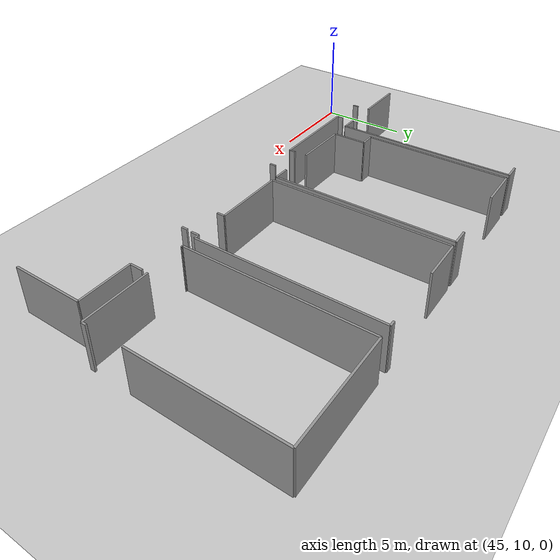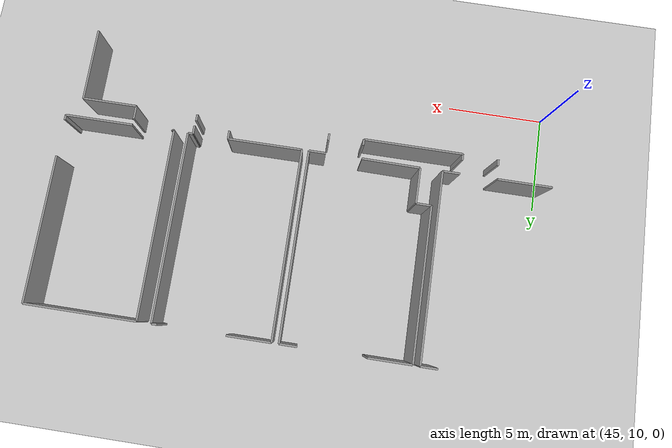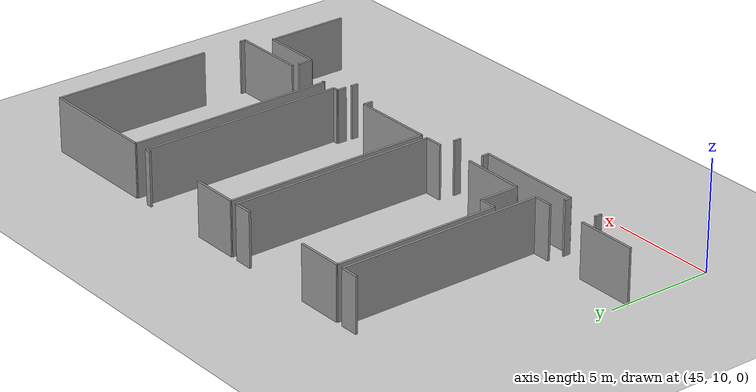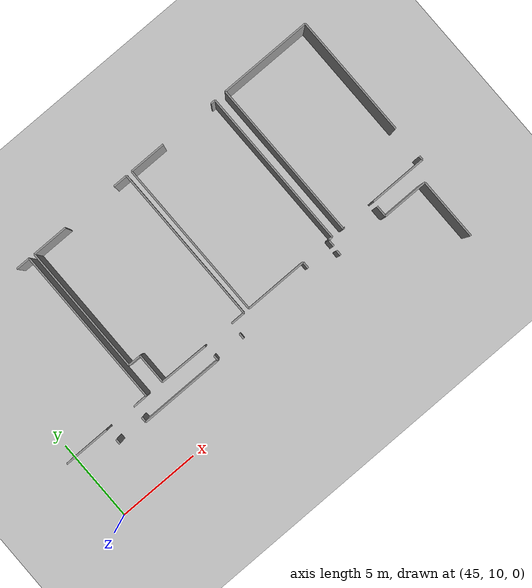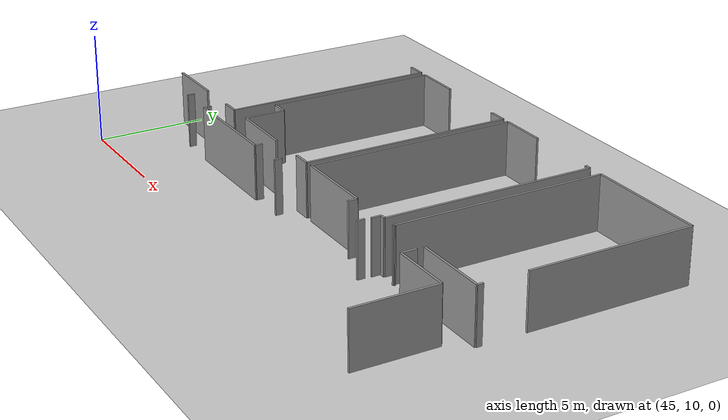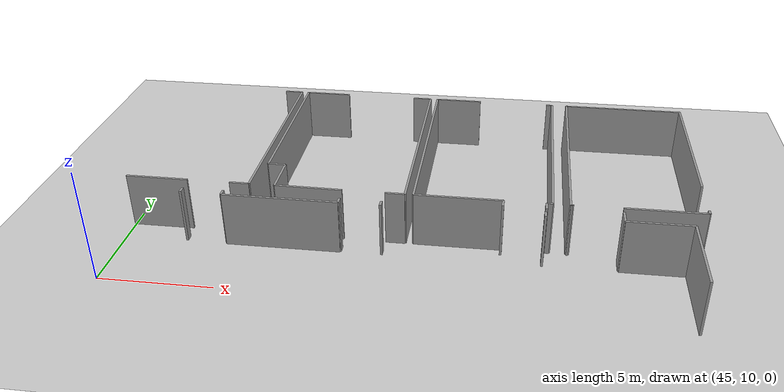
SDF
<sdf version="1.6">
 <world name="default">
  <model name="ground_plane">
   <static>1</static>
   <link name="link">
    <collision name="collision">
     <geometry><plane><normal>0 0 1</normal><size>100 100</size></plane></geometry>
     <surface><friction><ode><mu>100</mu><mu2>50</mu2></ode></friction></surface>
    </collision>
    <visual name="visual">
     <cast_shadows>0</cast_shadows>
     <geometry><plane><normal>0 0 1</normal><size>100 100</size></plane></geometry>
     <material>
      <script><uri>file://media/materials/scripts/gazebo.material</uri><name>Gazebo/Grey</name></script>
     </material>
    </visual>
   </link>
  </model>
  <model name="0510032196_A_40_1_104">
   <static>1</static>
   <link name="Wall_118">
    <collision name="Wall_118_Collision">
     <geometry><box><size>0.856590920645 0.1 2.5</size></box></geometry>
     <pose>0.428295460322 0 1.25 0 0 0</pose>
    </collision>
    <visual name="Wall_118_Visual">
     <pose>0.428295460322 0 1.25 0 0 0</pose>
     <geometry><box><size>0.856590920645 0.1 2.5</size></box></geometry>
     <material>
      <script><uri>file://media/materials/scripts/gazebo.material</uri><name>Gazebo/Grey</name></script>
      <ambient>1 1 1 1</ambient>
     </material>
    </visual>
    <pose>115.048929897 -0.318107874536 0 0 0 0.0</pose>
   </link>
   <link name="Wall_119">
    <collision name="Wall_119_Collision">
     <geometry><box><size>9.63677494789 0.1 2.5</size></box></geometry>
     <pose>4.81838747395 0 1.25 0 0 0</pose>
    </collision>
    <visual name="Wall_119_Visual">
     <pose>4.81838747395 0 1.25 0 0 0</pose>
     <geometry><box><size>9.63677494789 0.1 2.5</size></box></geometry>
     <material>
      <script><uri>file://media/materials/scripts/gazebo.material</uri><name>Gazebo/Grey</name></script>
      <ambient>1 1 1 1</ambient>
     </material>
    </visual>
    <pose>115.905520817 -0.318107874536 0 0 0 -1.57079632679</pose>
   </link>
   <link name="Wall_120">
    <collision name="Wall_120_Collision">
     <geometry><box><size>0.87311270398 0.1 2.5</size></box></geometry>
     <pose>0.43655635199 0 1.25 0 0 0</pose>
    </collision>
    <visual name="Wall_120_Visual">
     <pose>0.43655635199 0 1.25 0 0 0</pose>
     <geometry><box><size>0.87311270398 0.1 2.5</size></box></geometry>
     <material>
      <script><uri>file://media/materials/scripts/gazebo.material</uri><name>Gazebo/Grey</name></script>
      <ambient>1 1 1 1</ambient>
     </material>
    </visual>
    <pose>115.905520817 -9.95488282243 0 0 0 3.14159265359</pose>
   </link>
   <link name="Wall_121">
    <collision name="Wall_121_Collision">
     <geometry><box><size>2.77820141325 0.1 2.5</size></box></geometry>
     <pose>1.38910070662 0 1.25 0 0 0</pose>
    </collision>
    <visual name="Wall_121_Visual">
     <pose>1.38910070662 0 1.25 0 0 0</pose>
     <geometry><box><size>2.77820141325 0.1 2.5</size></box></geometry>
     <material>
      <script><uri>file://media/materials/scripts/gazebo.material</uri><name>Gazebo/Grey</name></script>
      <ambient>1 1 1 1</ambient>
     </material>
    </visual>
    <pose>113.146383 -9.95488282243 0 0 0 3.14159265359</pose>
   </link>
   <link name="Wall_122">
    <collision name="Wall_122_Collision">
     <geometry><box><size>1.83518885669 0.1 2.5</size></box></geometry>
     <pose>0.917594428346 0 1.25 0 0 0</pose>
    </collision>
    <visual name="Wall_122_Visual">
     <pose>0.917594428346 0 1.25 0 0 0</pose>
     <geometry><box><size>1.83518885669 0.1 2.5</size></box></geometry>
     <material>
      <script><uri>file://media/materials/scripts/gazebo.material</uri><name>Gazebo/Grey</name></script>
      <ambient>1 1 1 1</ambient>
     </material>
    </visual>
    <pose>117.040440242 -9.94700320268 0 0 0 1.57079632679</pose>
   </link>
   <link name="Wall_123">
    <collision name="Wall_123_Collision">
     <geometry><box><size>0.780336536018 0.1 2.5</size></box></geometry>
     <pose>0.390168268009 0 1.25 0 0 0</pose>
    </collision>
    <visual name="Wall_123_Visual">
     <pose>0.390168268009 0 1.25 0 0 0</pose>
     <geometry><box><size>0.780336536018 0.1 2.5</size></box></geometry>
     <material>
      <script><uri>file://media/materials/scripts/gazebo.material</uri><name>Gazebo/Grey</name></script>
      <ambient>1 1 1 1</ambient>
     </material>
    </visual>
    <pose>117.040440242 -8.11181434599 0 0 0 3.14159265359</pose>
   </link>
   <link name="Wall_124">
    <collision name="Wall_124_Collision">
     <geometry><box><size>7.78404758274 0.1 2.5</size></box></geometry>
     <pose>3.89202379137 0 1.25 0 0 0</pose>
    </collision>
    <visual name="Wall_124_Visual">
     <pose>3.89202379137 0 1.25 0 0 0</pose>
     <geometry><box><size>7.78404758274 0.1 2.5</size></box></geometry>
     <material>
      <script><uri>file://media/materials/scripts/gazebo.material</uri><name>Gazebo/Grey</name></script>
      <ambient>1 1 1 1</ambient>
     </material>
    </visual>
    <pose>116.260103706 -8.11181434599 0 0 0 1.57079632679</pose>
   </link>
   <link name="Wall_125">
    <collision name="Wall_125_Collision">
     <geometry><box><size>2.18214630675 0.1 2.5</size></box></geometry>
     <pose>1.09107315337 0 1.25 0 0 0</pose>
    </collision>
    <visual name="Wall_125_Visual">
     <pose>1.09107315337 0 1.25 0 0 0</pose>
     <geometry><box><size>2.18214630675 0.1 2.5</size></box></geometry>
     <material>
      <script><uri>file://media/materials/scripts/gazebo.material</uri><name>Gazebo/Grey</name></script>
      <ambient>1 1 1 1</ambient>
     </material>
    </visual>
    <pose>116.260103706 -0.327766763256 0 0 0 0.0</pose>
   </link>
   <link name="Wall_126">
    <collision name="Wall_126_Collision">
     <geometry><box><size>0.883279955264 0.1 2.5</size></box></geometry>
     <pose>0.441639977632 0 1.25 0 0 0</pose>
    </collision>
    <visual name="Wall_126_Visual">
     <pose>0.441639977632 0 1.25 0 0 0</pose>
     <geometry><box><size>0.883279955264 0.1 2.5</size></box></geometry>
     <material>
      <script><uri>file://media/materials/scripts/gazebo.material</uri><name>Gazebo/Grey</name></script>
      <ambient>1 1 1 1</ambient>
     </material>
    </visual>
    <pose>121.834299222 -0.327766763256 0 0 0 0.0</pose>
   </link>
   <link name="Wall_127">
    <collision name="Wall_127_Collision">
     <geometry><box><size>9.65253418738 0.1 2.5</size></box></geometry>
     <pose>4.82626709369 0 1.25 0 0 0</pose>
    </collision>
    <visual name="Wall_127_Visual">
     <pose>4.82626709369 0 1.25 0 0 0</pose>
     <geometry><box><size>9.65253418738 0.1 2.5</size></box></geometry>
     <material>
      <script><uri>file://media/materials/scripts/gazebo.material</uri><name>Gazebo/Grey</name></script>
      <ambient>1 1 1 1</ambient>
     </material>
    </visual>
    <pose>122.717579177 -0.327766763256 0 0 0 -1.57079632679</pose>
   </link>
   <link name="Wall_128">
    <collision name="Wall_128_Collision">
     <geometry><box><size>0.860403639876 0.1 2.5</size></box></geometry>
     <pose>0.430201819938 0 1.25 0 0 0</pose>
    </collision>
    <visual name="Wall_128_Visual">
     <pose>0.430201819938 0 1.25 0 0 0</pose>
     <geometry><box><size>0.860403639876 0.1 2.5</size></box></geometry>
     <material>
      <script><uri>file://media/materials/scripts/gazebo.material</uri><name>Gazebo/Grey</name></script>
      <ambient>1 1 1 1</ambient>
     </material>
    </visual>
    <pose>122.717579177 -9.98030095064 0 0 0 3.14159265359</pose>
   </link>
   <link name="Wall_129">
    <collision name="Wall_129_Collision">
     <geometry><box><size>2.96775327216 0.1 2.5</size></box></geometry>
     <pose>1.48387663608 0 1.25 0 0 0</pose>
    </collision>
    <visual name="Wall_129_Visual">
     <pose>1.48387663608 0 1.25 0 0 0</pose>
     <geometry><box><size>2.96775327216 0.1 2.5</size></box></geometry>
     <material>
      <script><uri>file://media/materials/scripts/gazebo.material</uri><name>Gazebo/Grey</name></script>
      <ambient>1 1 1 1</ambient>
     </material>
    </visual>
    <pose>120.00800671 -9.98030095064 0 0 0 3.1303725677</pose>
   </link>
   <link name="Wall_130">
    <collision name="Wall_130_Collision">
     <geometry><box><size>9.64999237456 0.1 2.5</size></box></geometry>
     <pose>4.82499618728 0 1.25 0 0 0</pose>
    </collision>
    <visual name="Wall_130_Visual">
     <pose>4.82499618728 0 1.25 0 0 0</pose>
     <geometry><box><size>9.64999237456 0.1 2.5</size></box></geometry>
     <material>
      <script><uri>file://media/materials/scripts/gazebo.material</uri><name>Gazebo/Grey</name></script>
      <ambient>1 1 1 1</ambient>
     </material>
    </visual>
    <pose>123.073432972 -9.97610695948 0 0 0 1.57079632679</pose>
   </link>
   <link name="Wall_131">
    <collision name="Wall_131_Collision">
     <geometry><box><size>2.21646077983 0.1 2.5</size></box></geometry>
     <pose>1.10823038991 0 1.25 0 0 0</pose>
    </collision>
    <visual name="Wall_131_Visual">
     <pose>1.10823038991 0 1.25 0 0 0</pose>
     <geometry><box><size>2.21646077983 0.1 2.5</size></box></geometry>
     <material>
      <script><uri>file://media/materials/scripts/gazebo.material</uri><name>Gazebo/Grey</name></script>
      <ambient>1 1 1 1</ambient>
     </material>
    </visual>
    <pose>123.073432972 -0.326114584922 0 0 0 0.0</pose>
   </link>
   <link name="Wall_132">
    <collision name="Wall_132_Collision">
     <geometry><box><size>0.279599410299 0.1 2.5</size></box></geometry>
     <pose>0.13979970515 0 1.25 0 0 0</pose>
    </collision>
    <visual name="Wall_132_Visual">
     <pose>0.13979970515 0 1.25 0 0 0</pose>
     <geometry><box><size>0.279599410299 0.1 2.5</size></box></geometry>
     <material>
      <script><uri>file://media/materials/scripts/gazebo.material</uri><name>Gazebo/Grey</name></script>
      <ambient>1 1 1 1</ambient>
     </material>
    </visual>
    <pose>128.656524834 -0.326114584922 0 0 0 0.0</pose>
   </link>
   <link name="Wall_133">
    <collision name="Wall_133_Collision">
     <geometry><box><size>9.63080168776 0.1 2.5</size></box></geometry>
     <pose>4.81540084388 0 1.25 0 0 0</pose>
    </collision>
    <visual name="Wall_133_Visual">
     <pose>4.81540084388 0 1.25 0 0 0</pose>
     <geometry><box><size>9.63080168776 0.1 2.5</size></box></geometry>
     <material>
      <script><uri>file://media/materials/scripts/gazebo.material</uri><name>Gazebo/Grey</name></script>
      <ambient>1 1 1 1</ambient>
     </material>
    </visual>
    <pose>128.936124244 -0.326114584922 0 0 0 -1.57079632679</pose>
   </link>
   <link name="Wall_134">
    <collision name="Wall_134_Collision">
     <geometry><box><size>0.259264907732 0.1 2.5</size></box></geometry>
     <pose>0.129632453866 0 1.25 0 0 0</pose>
    </collision>
    <visual name="Wall_134_Visual">
     <pose>0.129632453866 0 1.25 0 0 0</pose>
     <geometry><box><size>0.259264907732 0.1 2.5</size></box></geometry>
     <material>
      <script><uri>file://media/materials/scripts/gazebo.material</uri><name>Gazebo/Grey</name></script>
      <ambient>1 1 1 1</ambient>
     </material>
    </visual>
    <pose>128.936124244 -9.95691627269 0 0 0 3.14159265359</pose>
   </link>
   <link name="Wall_135">
    <collision name="Wall_135_Collision">
     <geometry><box><size>0.433124904682 0.1 2.5</size></box></geometry>
     <pose>0.216562452341 0 1.25 0 0 0</pose>
    </collision>
    <visual name="Wall_135_Visual">
     <pose>0.216562452341 0 1.25 0 0 0</pose>
     <geometry><box><size>0.433124904682 0.1 2.5</size></box></geometry>
     <material>
      <script><uri>file://media/materials/scripts/gazebo.material</uri><name>Gazebo/Grey</name></script>
      <ambient>1 1 1 1</ambient>
     </material>
    </visual>
    <pose>128.676859336 -9.95691627269 0 0 0 -1.57079632679</pose>
   </link>
   <link name="Wall_136">
    <collision name="Wall_136_Collision">
     <geometry><box><size>0.417619846475 0.1 2.5</size></box></geometry>
     <pose>0.208809923237 0 1.25 0 0 0</pose>
    </collision>
    <visual name="Wall_136_Visual">
     <pose>0.208809923237 0 1.25 0 0 0</pose>
     <geometry><box><size>0.417619846475 0.1 2.5</size></box></geometry>
     <material>
      <script><uri>file://media/materials/scripts/gazebo.material</uri><name>Gazebo/Grey</name></script>
      <ambient>1 1 1 1</ambient>
     </material>
    </visual>
    <pose>126.874714046 -10.3900411774 0 0 0 1.57079632679</pose>
   </link>
   <link name="Wall_137">
    <collision name="Wall_137_Collision">
     <geometry><box><size>3.80128286041 0.1 2.5</size></box></geometry>
     <pose>1.9006414302 0 1.25 0 0 0</pose>
    </collision>
    <visual name="Wall_137_Visual">
     <pose>1.9006414302 0 1.25 0 0 0</pose>
     <geometry><box><size>3.80128286041 0.1 2.5</size></box></geometry>
     <material>
      <script><uri>file://media/materials/scripts/gazebo.material</uri><name>Gazebo/Grey</name></script>
      <ambient>1 1 1 1</ambient>
     </material>
    </visual>
    <pose>126.874714046 -9.97242133089 0 0 0 -3.1406230785</pose>
   </link>
   <link name="Wall_138">
    <collision name="Wall_138_Collision">
     <geometry><box><size>9.6721061461 0.1 2.5</size></box></geometry>
     <pose>4.83605307305 0 1.25 0 0 0</pose>
    </collision>
    <visual name="Wall_138_Visual">
     <pose>4.83605307305 0 1.25 0 0 0</pose>
     <geometry><box><size>9.6721061461 0.1 2.5</size></box></geometry>
     <material>
      <script><uri>file://media/materials/scripts/gazebo.material</uri><name>Gazebo/Grey</name></script>
      <ambient>1 1 1 1</ambient>
     </material>
    </visual>
    <pose>129.665624523 -9.99987290936 0 0 0 1.57079632679</pose>
   </link>
   <link name="Wall_139">
    <collision name="Wall_139_Collision">
     <geometry><box><size>5.62248995984 0.1 2.5</size></box></geometry>
     <pose>2.81124497992 0 1.25 0 0 0</pose>
    </collision>
    <visual name="Wall_139_Visual">
     <pose>2.81124497992 0 1.25 0 0 0</pose>
     <geometry><box><size>5.62248995984 0.1 2.5</size></box></geometry>
     <material>
      <script><uri>file://media/materials/scripts/gazebo.material</uri><name>Gazebo/Grey</name></script>
      <ambient>1 1 1 1</ambient>
     </material>
    </visual>
    <pose>129.665624523 -0.327766763256 0 0 0 0.0</pose>
   </link>
   <link name="Wall_140">
    <collision name="Wall_140_Collision">
     <geometry><box><size>7.4411570332 0.1 2.5</size></box></geometry>
     <pose>3.7205785166 0 1.25 0 0 0</pose>
    </collision>
    <visual name="Wall_140_Visual">
     <pose>3.7205785166 0 1.25 0 0 0</pose>
     <geometry><box><size>7.4411570332 0.1 2.5</size></box></geometry>
     <material>
      <script><uri>file://media/materials/scripts/gazebo.material</uri><name>Gazebo/Grey</name></script>
      <ambient>1 1 1 1</ambient>
     </material>
    </visual>
    <pose>135.288114483 -0.327766763256 0 0 0 -1.57079632679</pose>
   </link>
   <link name="Wall_141">
    <collision name="Wall_141_Collision">
     <geometry><box><size>0.25418128209 0.1 2.5</size></box></geometry>
     <pose>0.127090641045 0 1.25 0 0 0</pose>
    </collision>
    <visual name="Wall_141_Visual">
     <pose>0.127090641045 0 1.25 0 0 0</pose>
     <geometry><box><size>0.25418128209 0.1 2.5</size></box></geometry>
     <material>
      <script><uri>file://media/materials/scripts/gazebo.material</uri><name>Gazebo/Grey</name></script>
      <ambient>1 1 1 1</ambient>
     </material>
    </visual>
    <pose>135.288114483 -9.70070154034 0 0 0 -1.57079632679</pose>
   </link>
   <link name="Wall_142">
    <collision name="Wall_142_Collision">
     <geometry><box><size>3.46321996848 0.1 2.5</size></box></geometry>
     <pose>1.73160998424 0 1.25 0 0 0</pose>
    </collision>
    <visual name="Wall_142_Visual">
     <pose>1.73160998424 0 1.25 0 0 0</pose>
     <geometry><box><size>3.46321996848 0.1 2.5</size></box></geometry>
     <material>
      <script><uri>file://media/materials/scripts/gazebo.material</uri><name>Gazebo/Grey</name></script>
      <ambient>1 1 1 1</ambient>
     </material>
    </visual>
    <pose>135.288114483 -9.95488282243 0 0 0 3.14159265359</pose>
   </link>
   <link name="Wall_143">
    <collision name="Wall_143_Collision">
     <geometry><box><size>0.0453713588531 0.1 2.5</size></box></geometry>
     <pose>0.0226856794266 0 1.25 0 0 0</pose>
    </collision>
    <visual name="Wall_143_Visual">
     <pose>0.0226856794266 0 1.25 0 0 0</pose>
     <geometry><box><size>0.0453713588531 0.1 2.5</size></box></geometry>
     <material>
      <script><uri>file://media/materials/scripts/gazebo.material</uri><name>Gazebo/Grey</name></script>
      <ambient>1 1 1 1</ambient>
     </material>
    </visual>
    <pose>129.744420721 -9.95488282243 0 0 0 -1.57079632679</pose>
   </link>
   <link name="Wall_144">
    <collision name="Wall_144_Collision">
     <geometry><box><size>0.0787971198747 0.1 2.5</size></box></geometry>
     <pose>0.0393985599373 0 1.25 0 0 0</pose>
    </collision>
    <visual name="Wall_144_Visual">
     <pose>0.0393985599373 0 1.25 0 0 0</pose>
     <geometry><box><size>0.0787971198747 0.1 2.5</size></box></geometry>
     <material>
      <script><uri>file://media/materials/scripts/gazebo.material</uri><name>Gazebo/Grey</name></script>
      <ambient>1 1 1 1</ambient>
     </material>
    </visual>
    <pose>129.744420721 -10.0002541813 0 0 0 3.13675398167</pose>
   </link>
   <link name="Wall_462">
    <collision name="Wall_462_Collision">
     <geometry><box><size>0.31976005287 0.1 2.5</size></box></geometry>
     <pose>0.159880026435 0 1.25 0 0 0</pose>
    </collision>
    <visual name="Wall_462_Visual">
     <pose>0.159880026435 0 1.25 0 0 0</pose>
     <geometry><box><size>0.31976005287 0.1 2.5</size></box></geometry>
     <material>
      <script><uri>file://media/materials/scripts/gazebo.material</uri><name>Gazebo/Grey</name></script>
      <ambient>1 1 1 1</ambient>
     </material>
    </visual>
    <pose>113.190864725 -10.9796146612 0 0 0 1.57079632679</pose>
   </link>
   <link name="Wall_463">
    <collision name="Wall_463_Collision">
     <geometry><box><size>0.332087845051 0.1 2.5</size></box></geometry>
     <pose>0.166043922526 0 1.25 0 0 0</pose>
    </collision>
    <visual name="Wall_463_Visual">
     <pose>0.166043922526 0 1.25 0 0 0</pose>
     <geometry><box><size>0.332087845051 0.1 2.5</size></box></geometry>
     <material>
      <script><uri>file://media/materials/scripts/gazebo.material</uri><name>Gazebo/Grey</name></script>
      <ambient>1 1 1 1</ambient>
     </material>
    </visual>
    <pose>114.990468202 -10.6598546083 0 0 0 -1.57079632679</pose>
   </link>
   <link name="Wall_464">
    <collision name="Wall_464_Collision">
     <geometry><box><size>5.04422754308 0.1 2.5</size></box></geometry>
     <pose>2.52211377154 0 1.25 0 0 0</pose>
    </collision>
    <visual name="Wall_464_Visual">
     <pose>2.52211377154 0 1.25 0 0 0</pose>
     <geometry><box><size>5.04422754308 0.1 2.5</size></box></geometry>
     <material>
      <script><uri>file://media/materials/scripts/gazebo.material</uri><name>Gazebo/Grey</name></script>
      <ambient>1 1 1 1</ambient>
     </material>
    </visual>
    <pose>114.990468202 -10.9919424534 0 0 0 0.0</pose>
   </link>
   <link name="Wall_465">
    <collision name="Wall_465_Collision">
     <geometry><box><size>0.318997509023 0.1 2.5</size></box></geometry>
     <pose>0.159498754512 0 1.25 0 0 0</pose>
    </collision>
    <visual name="Wall_465_Visual">
     <pose>0.159498754512 0 1.25 0 0 0</pose>
     <geometry><box><size>0.318997509023 0.1 2.5</size></box></geometry>
     <material>
      <script><uri>file://media/materials/scripts/gazebo.material</uri><name>Gazebo/Grey</name></script>
      <ambient>1 1 1 1</ambient>
     </material>
    </visual>
    <pose>120.034695745 -10.9919424534 0 0 0 1.57079632679</pose>
   </link>
   <link name="Wall_466">
    <collision name="Wall_466_Collision">
     <geometry><box><size>0.339586192873 0.1 2.5</size></box></geometry>
     <pose>0.169793096436 0 1.25 0 0 0</pose>
    </collision>
    <visual name="Wall_466_Visual">
     <pose>0.169793096436 0 1.25 0 0 0</pose>
     <geometry><box><size>0.339586192873 0.1 2.5</size></box></geometry>
     <material>
      <script><uri>file://media/materials/scripts/gazebo.material</uri><name>Gazebo/Grey</name></script>
      <ambient>1 1 1 1</ambient>
     </material>
    </visual>
    <pose>121.824131971 -10.6729449443 0 0 0 -1.57079632679</pose>
   </link>
   <link name="Wall_469">
    <collision name="Wall_469_Collision">
     <geometry><box><size>0.336408926847 0.1 2.5</size></box></geometry>
     <pose>0.168204463423 0 1.25 0 0 0</pose>
    </collision>
    <visual name="Wall_469_Visual">
     <pose>0.168204463423 0 1.25 0 0 0</pose>
     <geometry><box><size>0.336408926847 0.1 2.5</size></box></geometry>
     <material>
      <script><uri>file://media/materials/scripts/gazebo.material</uri><name>Gazebo/Grey</name></script>
      <ambient>1 1 1 1</ambient>
     </material>
    </visual>
    <pose>128.637461237 -10.6583295206 0 0 0 -1.57079632679</pose>
   </link>
   <link name="Wall_472">
    <collision name="Wall_472_Collision">
     <geometry><box><size>0.687941639978 0.1 2.5</size></box></geometry>
     <pose>0.343970819989 0 1.25 0 0 0</pose>
    </collision>
    <visual name="Wall_472_Visual">
     <pose>0.343970819989 0 1.25 0 0 0</pose>
     <geometry><box><size>0.687941639978 0.1 2.5</size></box></geometry>
     <material>
      <script><uri>file://media/materials/scripts/gazebo.material</uri><name>Gazebo/Grey</name></script>
      <ambient>1 1 1 1</ambient>
     </material>
    </visual>
    <pose>131.818539983 -10.277947232 0 0 0 -1.57079632679</pose>
   </link>
   <link name="Wall_473">
    <collision name="Wall_473_Collision">
     <geometry><box><size>2.77693050684 0.1 2.5</size></box></geometry>
     <pose>1.38846525342 0 1.25 0 0 0</pose>
    </collision>
    <visual name="Wall_473_Visual">
     <pose>1.38846525342 0 1.25 0 0 0</pose>
     <geometry><box><size>2.77693050684 0.1 2.5</size></box></geometry>
     <material>
      <script><uri>file://media/materials/scripts/gazebo.material</uri><name>Gazebo/Grey</name></script>
      <ambient>1 1 1 1</ambient>
     </material>
    </visual>
    <pose>131.818539983 -10.9658888719 0 0 0 0.0</pose>
   </link>
   <link name="Wall_474">
    <collision name="Wall_474_Collision">
     <geometry><box><size>3.75158863301 0.1 2.5</size></box></geometry>
     <pose>1.87579431651 0 1.25 0 0 0</pose>
    </collision>
    <visual name="Wall_474_Visual">
     <pose>1.87579431651 0 1.25 0 0 0</pose>
     <geometry><box><size>3.75158863301 0.1 2.5</size></box></geometry>
     <material>
      <script><uri>file://media/materials/scripts/gazebo.material</uri><name>Gazebo/Grey</name></script>
      <ambient>1 1 1 1</ambient>
     </material>
    </visual>
    <pose>134.59547049 -10.9658888719 0 0 0 -1.57079632679</pose>
   </link>
   <pose>-65.45 24.1679019877 0 0 0 0</pose>
  </model>
 </world>
</sdf>
